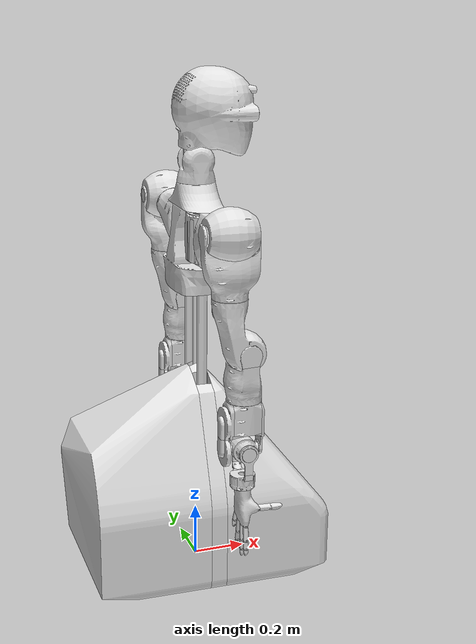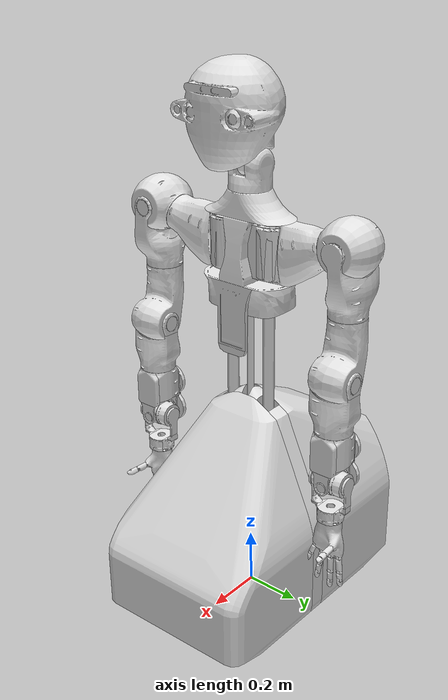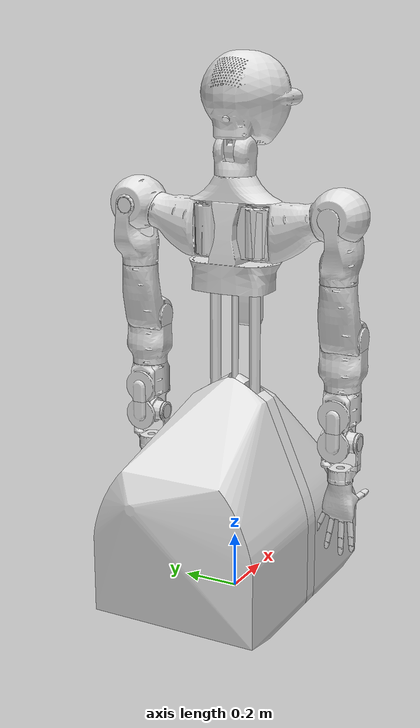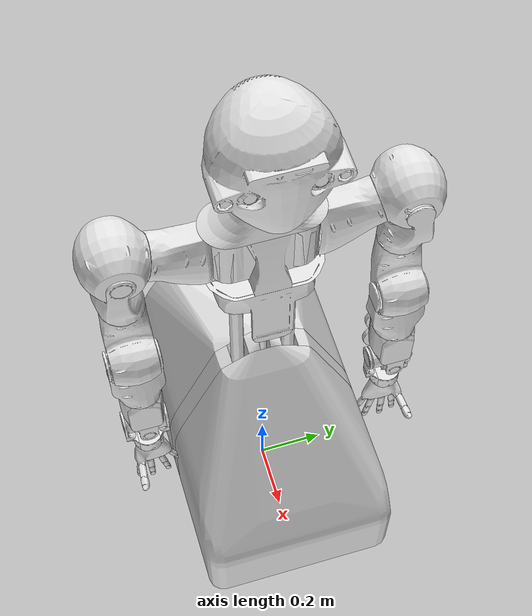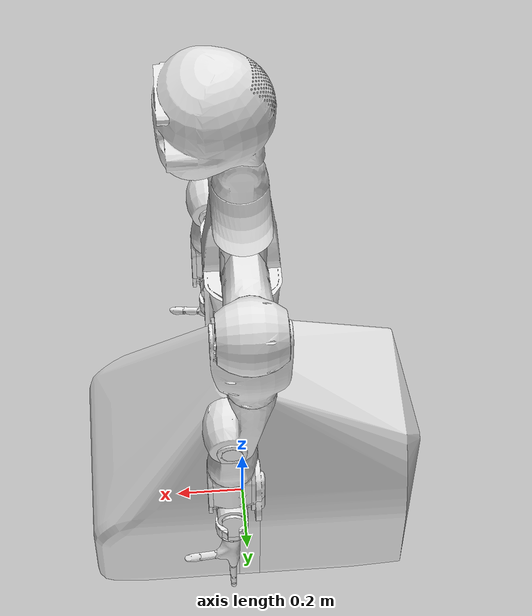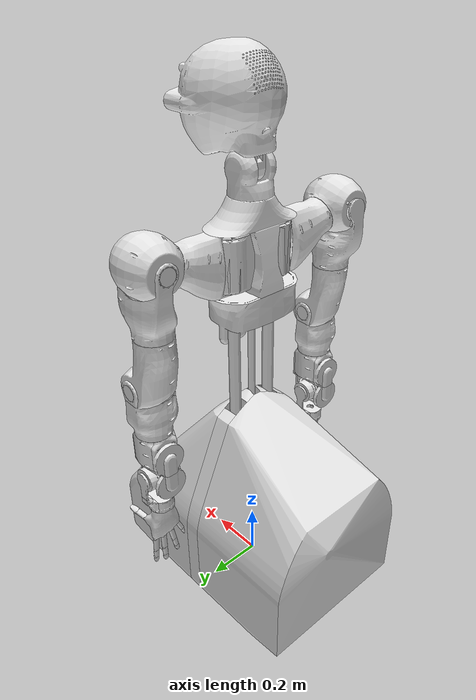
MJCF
<?xml version="1.0" ?>
<mujoco model="armar6">
	<compiler meshdir="armar6/meshes" texturedir="armar6/textures" angle="radian" autolimits="true" balanceinertia="true" boundmass="0.000001" boundinertia="0.000001"/>
	<default>
		<default class="visual">
			<geom contype="0" conaffinity="0"/>
		</default>
		<default class="collision">
			<geom rgba="0.9 0.9 0.9 1.0"/>
		</default>
	</default>
	<asset>
		<mesh name="platform_01" file="stl/platform_01.stl" scale="1.0 1.0 1.0"/>
		<mesh name="platform_02" file="stl/platform_02.stl" scale="1.0 1.0 1.0"/>
		<mesh name="platform_03" file="stl/platform_03.stl" scale="1.0 1.0 1.0"/>
		<mesh name="platform_04" file="stl/platform_04.stl" scale="1.0 1.0 1.0"/>
		<mesh name="platform_05" file="stl/platform_05.stl" scale="1.0 1.0 1.0"/>
		<mesh name="platform_06" file="stl/platform_06.stl" scale="1.0 1.0 1.0"/>
		<mesh name="platform_07" file="stl/platform_07.stl" scale="1.0 1.0 1.0"/>
		<mesh name="platform_08" file="stl/platform_08.stl" scale="1.0 1.0 1.0"/>
		<mesh name="platform_09" file="stl/platform_09.stl" scale="1.0 1.0 1.0"/>
		<mesh name="torso_1" file="stl/torso_1.stl" scale="1.0 1.0 1.0"/>
		<mesh name="torso_2" file="stl/torso_2.stl" scale="1.0 1.0 1.0"/>
		<mesh name="torso_3" file="stl/torso_3.stl" scale="1.0 1.0 1.0"/>
		<mesh name="torso_4" file="stl/torso_4.stl" scale="1.0 1.0 1.0"/>
		<mesh name="Mesh_2h09010_arml_cla" file="stl/Mesh_2h09010_arml_cla.stl" scale="1.0 1.0 1.0"/>
		<mesh name="Mesh_6a11000_halsbasis_t1" file="stl/Mesh_6a11000_halsbasis_t1.stl" scale="1.0 1.0 1.0"/>
		<mesh name="Mesh_2h09020_arml_t12" file="stl/Mesh_2h09020_arml_t12.stl" scale="1.0 1.0 1.0"/>
		<mesh name="Mesh_2h09030_arml_t23" file="stl/Mesh_2h09030_arml_t23.stl" scale="1.0 1.0 1.0"/>
		<mesh name="Mesh_2h09040_arml_t34" file="stl/Mesh_2h09040_arml_t34.stl" scale="1.0 1.0 1.0"/>
		<mesh name="Mesh_2h09050_arml_t45" file="stl/Mesh_2h09050_arml_t45.stl" scale="1.0 1.0 1.0"/>
		<mesh name="Mesh_2h09060_arml_t56_01" file="stl/Mesh_2h09060_arml_t56_01.stl" scale="1.0 1.0 1.0"/>
		<mesh name="Mesh_2h09060_arml_t56_02" file="stl/Mesh_2h09060_arml_t56_02.stl" scale="1.0 1.0 1.0"/>
		<mesh name="Mesh_2h09060_arml_t56_03" file="stl/Mesh_2h09060_arml_t56_03.stl" scale="1.0 1.0 1.0"/>
		<mesh name="Mesh_2h09070_arml_t67_01" file="stl/Mesh_2h09070_arml_t67_01.stl" scale="1.0 1.0 1.0"/>
		<mesh name="Mesh_2h09070_arml_t67_02" file="stl/Mesh_2h09070_arml_t67_02.stl" scale="1.0 1.0 1.0"/>
		<mesh name="Mesh_2h09070_arml_t67_03" file="stl/Mesh_2h09070_arml_t67_03.stl" scale="1.0 1.0 1.0"/>
		<mesh name="Mesh_2h09070_arml_t67_04" file="stl/Mesh_2h09070_arml_t67_04.stl" scale="1.0 1.0 1.0"/>
		<mesh name="Mesh_2h09070_arml_t67_05" file="stl/Mesh_2h09070_arml_t67_05.stl" scale="1.0 1.0 1.0"/>
		<mesh name="Mesh_2h09070_arml_t67_06" file="stl/Mesh_2h09070_arml_t67_06.stl" scale="1.0 1.0 1.0"/>
		<mesh name="Mesh_2h09070_arml_t67_07" file="stl/Mesh_2h09070_arml_t67_07.stl" scale="1.0 1.0 1.0"/>
		<mesh name="Mesh_2h09070_arml_t67_08" file="stl/Mesh_2h09070_arml_t67_08.stl" scale="1.0 1.0 1.0"/>
		<mesh name="Mesh_2h09070_arml_t67_09" file="stl/Mesh_2h09070_arml_t67_09.stl" scale="1.0 1.0 1.0"/>
		<mesh name="Mesh_2h09070_arml_t67_10" file="stl/Mesh_2h09070_arml_t67_10.stl" scale="1.0 1.0 1.0"/>
		<mesh name="Mesh_2h09080_arml_t78" file="stl/Mesh_2h09080_arml_t78.stl" scale="1.0 1.0 1.0"/>
		<mesh name="Mesh_2h09090_arml_t8_01" file="stl/Mesh_2h09090_arml_t8_01.stl" scale="1.0 1.0 1.0"/>
		<mesh name="Mesh_2h09090_arml_t8_02" file="stl/Mesh_2h09090_arml_t8_02.stl" scale="1.0 1.0 1.0"/>
		<mesh name="Mesh_2h09090_arml_t8_03" file="stl/Mesh_2h09090_arml_t8_03.stl" scale="1.0 1.0 1.0"/>
		<mesh name="Mesh_2h09090_arml_t8_04" file="stl/Mesh_2h09090_arml_t8_04.stl" scale="1.0 1.0 1.0"/>
		<mesh name="Mesh_2h09090_arml_t8_05" file="stl/Mesh_2h09090_arml_t8_05.stl" scale="1.0 1.0 1.0"/>
		<mesh name="Mesh_2h09090_arml_t8_06" file="stl/Mesh_2h09090_arml_t8_06.stl" scale="1.0 1.0 1.0"/>
		<mesh name="Mesh_2h09090_arml_t8_07" file="stl/Mesh_2h09090_arml_t8_07.stl" scale="1.0 1.0 1.0"/>
		<mesh name="palm_l" file="stl/palm_l.stl" scale="1.0 1.0 1.0"/>
		<mesh name="index_prox" file="stl/index_prox.stl" scale="1.0 1.0 1.0"/>
		<mesh name="index_inter" file="stl/index_inter.stl" scale="1.0 1.0 1.0"/>
		<mesh name="index_dist" file="stl/index_dist.stl" scale="1.0 1.0 1.0"/>
		<mesh name="middle_prox" file="stl/middle_prox.stl" scale="1.0 1.0 1.0"/>
		<mesh name="middle_inter" file="stl/middle_inter.stl" scale="1.0 1.0 1.0"/>
		<mesh name="middle_dist" file="stl/middle_dist.stl" scale="1.0 1.0 1.0"/>
		<mesh name="pinky_prox" file="stl/pinky_prox.stl" scale="1.0 1.0 1.0"/>
		<mesh name="pinky_inter" file="stl/pinky_inter.stl" scale="1.0 1.0 1.0"/>
		<mesh name="pinky_dist" file="stl/pinky_dist.stl" scale="1.0 1.0 1.0"/>
		<mesh name="ring_prox" file="stl/ring_prox.stl" scale="1.0 1.0 1.0"/>
		<mesh name="ring_inter" file="stl/ring_inter.stl" scale="1.0 1.0 1.0"/>
		<mesh name="ring_dist" file="stl/ring_dist.stl" scale="1.0 1.0 1.0"/>
		<mesh name="thumb_prox" file="stl/thumb_prox.stl" scale="1.0 1.0 1.0"/>
		<mesh name="thumb_dist" file="stl/thumb_dist.stl" scale="1.0 1.0 1.0"/>
		<mesh name="palm_r" file="stl/palm_r.stl" scale="1.0 1.0 1.0"/>
		<mesh name="Mesh_6a12000_halsmitte_t12" file="stl/Mesh_6a12000_halsmitte_t12.stl" scale="1.0 1.0 1.0"/>
		<mesh name="Mesh_6a13000_halsoben_v13" file="stl/Mesh_6a13000_halsoben_v13.stl" scale="1.0 1.0 1.0"/>
	</asset>
	<worldbody>
		<body name="armar6" pos="0.0 0.0 0.0" quat="1.0 0.0 0.0 0.0">
			<geom name="Geom_0" type="mesh" pos="-0.23908907175064087 0.0011418842477723956 0.30750465393066406" quat="0.9987695813179016 -0.00035170995397493243 0.04766320437192917 0.013688200153410435" mesh="platform_01" class="collision"/>
			<geom name="Geom_1" type="mesh" pos="0.20871004462242126 -3.0155450076563284e-05 0.26197001338005066" quat="0.9861933588981628 -0.0011583680752664804 -0.16559343039989471 -0.0002805482072290033" mesh="platform_02" class="collision"/>
			<geom name="Geom_2" type="mesh" pos="6.449293876720219e-11 -1.9112326304915328e-11 0.14333148300647736" quat="0.7071067690849304 0.0 0.0 -0.7071067690849304" mesh="platform_03" class="collision"/>
			<geom name="Geom_3" type="mesh" pos="-2.2915676254342543e-06 -0.18701200187206268 0.298531174659729" quat="0.9986951351165771 -0.05106906592845917 -1.922875344462227e-05 1.3181876056478359e-05" mesh="platform_04" class="collision"/>
			<geom name="Geom_4" type="mesh" pos="9.5631241947558e-07 -0.07499920576810837 0.14335519075393677" quat="0.7071067690849304 1.3158047295291908e-05 -1.2814010688089184e-06 -0.7071067690849304" mesh="platform_05" class="collision"/>
			<geom name="Geom_5" type="mesh" pos="-3.338966735100257e-06 0.18701665103435516 0.298539400100708" quat="0.9986956119537354 0.05105941742658615 -1.5566569345537573e-05 -1.554261689307168e-05" mesh="platform_06" class="collision"/>
			<geom name="Geom_6" type="mesh" pos="-9.563812000124017e-07 0.07499920576810837 0.14335519075393677" quat="0.7071067690849304 -1.3158811270841397e-05 1.2820058827855974e-06 -0.7071067690849304" mesh="platform_07" class="collision"/>
			<geom name="Geom_7" type="mesh" pos="-2.4181961634894833e-05 -0.032434575259685516 0.3921465277671814" quat="0.7069283127784729 -0.0001096158375730738 -0.00024148341617546976 -0.7072851657867432" mesh="platform_08" class="collision"/>
			<geom name="Geom_8" type="mesh" pos="-2.4532324459869415e-05 0.032434575259685516 0.3921465277671814" quat="0.707281768321991 0.0002405394916422665 0.00011056109360652044 -0.7069317102432251" mesh="platform_09" class="collision"/>
			<body name="link0_7" pos="0.0 0.0 1.1950000524520874" quat="0.7071067690849304 0.0 0.0 -0.7071067690849304">
				<inertial mass="42.921875" pos="-8.60810268932255e-06 0.003858802607282996 0.03855016827583313" quat="0.7072494029998779 0.01781361922621727 -0.017727065831422806 0.7065173387527466" diaginertia="0.8874343633651733 0.7422398328781128 0.29746219515800476"/>
				<geom name="Geom_9" type="mesh" pos="-1.1988852747890633e-05 0.005371134728193283 0.02722056210041046" quat="0.7060954570770264 0.04865260049700737 -0.04827491566538811 0.7047919034957886" mesh="torso_1" class="collision"/>
				<geom name="Geom_10" type="mesh" pos="-0.0759999081492424 -0.00012338596570771188 -0.3070000112056732" quat="0.9999999403953552 -0.00039807689609006047 0.0 0.0" mesh="torso_2" class="collision"/>
				<geom name="Geom_11" type="mesh" pos="1.2635163748608846e-10 -0.0002385206607868895 -0.2995902895927429" quat="0.9992132186889648 -0.00039776507765054703 -1.5786925359861925e-05 -0.0396578423678875" mesh="torso_3" class="collision"/>
				<geom name="Geom_12" type="mesh" pos="0.0759999081492424 -0.0003654528991319239 -0.3069998025894165" quat="0.9999999403953552 -0.00039807771099731326 0.0 0.0" mesh="torso_4" class="collision"/>
				<geom name="Geom_13" type="mesh" pos="-0.08103914558887482 -4.163836820225697e-06 0.10412884503602982" quat="0.7049452066421509 0.02882375754415989 0.02880515716969967 0.7080901861190796" mesh="Mesh_2h09010_arml_cla" class="collision"/>
				<geom name="Geom_14" type="mesh" pos="0.08103914558887482 4.151164375798544e-06 0.10412884503602982" quat="0.7080906629562378 0.02880517765879631 -0.028823737055063248 -0.7049447298049927" mesh="Mesh_2h09010_arml_cla" class="collision"/>
				<geom name="Geom_15" type="mesh" pos="5.643061058435705e-07 6.404436021512083e-07 0.24260690808296204" quat="-0.0004728139901999384 0.7071082592010498 0.0004848051758017391 0.7071049809455872" mesh="Mesh_6a11000_halsbasis_t1" class="collision"/>
				<joint name="TorsoJoint" type="slide" pos="0.0 0.0 0.0" range="-0.5 0.5" axis="0.0 0.0 1.0"/>
				<body name="link0_63" pos="0.09000000357627869 3.3058799431273656e-07 0.10000000149011612" quat="0.7071087956428528 0.0 0.0 -0.7071048021316528">
					<inertial mass="4.641332149505615" pos="-1.9983554011560045e-06 0.11062423884868622 0.02188810519874096" quat="0.9445297718048096 -0.32842549681663513 0.00027361296815797687 0.0003834966628346592" diaginertia="0.024549242109060287 0.01810256391763687 0.014694479294121265"/>
					<geom name="Geom_56" type="mesh" pos="-1.9983554011560045e-06 0.11062423884868622 0.02188810519874096" quat="0.9445297718048096 -0.32842549681663513 0.00027361296815797687 0.0003834966628346592" mesh="Mesh_2h09020_arml_t12" class="collision"/>
					<joint name="ArmR1_Cla1" type="hinge" pos="0.0 0.0 0.0" range="0.0 0.0" axis="0.0 0.0 1.0"/>
					<body name="link0_65" pos="0.0 0.28977999091148376 0.07765000313520432" quat="1.0 0.0 0.0 0.0">
						<inertial mass="6.514058589935303" pos="-0.0026242216117680073 0.00547403609380126 0.0014532019849866629" quat="0.41690516471862793 0.561397135257721 0.44454503059387207 0.5598241686820984" diaginertia="0.025567620992660522 0.022996222600340843 0.022928500548005104"/>
						<geom name="Geom_57" type="mesh" pos="-0.0026242216117680073 0.00547403609380126 0.0014532019849866629" quat="0.41690516471862793 0.561397135257721 0.44454503059387207 0.5598241686820984" mesh="Mesh_2h09030_arml_t23" class="collision"/>
						<joint name="ArmR2_Sho1" type="hinge" pos="0.0 0.0 0.0" range="0.0 0.0" axis="0.0 0.9659258723258972 0.25881895422935486"/>
						<body name="link0_67" pos="0.0 0.0 0.0" quat="0.707105278968811 -0.7071082592010498 0.0 0.0">
							<inertial mass="4.186227321624756" pos="0.0031595618929713964 0.11988010257482529 0.009519310668110847" quat="0.6713733077049255 0.20513257384300232 0.6646022200584412 -0.2558952569961548" diaginertia="0.023510094732046127 0.01641996204853058 0.01437942311167717"/>
							<geom name="Geom_58" type="mesh" pos="0.0031595618929713964 0.11988010257482529 0.009519310668110847" quat="0.6713733077049255 0.20513257384300232 0.6646022200584412 -0.2558952569961548" mesh="Mesh_2h09040_arml_t34" class="collision"/>
							<joint name="ArmR3_Sho2" type="hinge" pos="0.0 0.0 0.0" range="0.0 0.0" axis="1.0 0.0 0.0"/>
							<body name="link0_69" pos="0.0 0.0 0.0" quat="0.4999980032444 -0.5000020265579224 -0.5 -0.5">
								<inertial mass="5.494523525238037" pos="-0.0022166140843182802 -0.03205019235610962 0.3651427626609802" quat="0.6883682012557983 0.14456790685653687 -0.16545535624027252 0.6912842392921448" diaginertia="0.033287789672613144 0.03231581673026085 0.01199717540293932"/>
								<geom name="Geom_59" type="mesh" pos="-0.0022166140843182802 -0.03205019235610962 0.3651427626609802" quat="0.6883682012557983 0.14456790685653687 -0.16545535624027252 0.6912842392921448" mesh="Mesh_2h09050_arml_t45" class="collision"/>
								<joint name="ArmR4_Sho3" type="hinge" pos="0.0 0.0 0.0" range="0.0 0.0" axis="0.0 0.0 1.0"/>
								<body name="link0_71" pos="0.0 -0.054999999701976776 0.4090000092983246" quat="1.0 0.0 0.0 0.0">
									<inertial mass="2.7591729164123535" pos="0.0013214589562267065 0.005565263330936432 0.1098216101527214" quat="0.47372815012931824 0.5198296308517456 0.42536303400993347 0.5695832371711731" diaginertia="0.00866414699703455 0.0074538071639835835 0.0066077555529773235"/>
									<geom name="Geom_60" type="mesh" pos="0.001954891486093402 0.005780649837106466 0.11422663927078247" quat="0.6546503901481628 -0.22352944314479828 0.6924439668655396 -0.20491154491901398" mesh="Mesh_2h09060_arml_t56_01" class="collision"/>
									<geom name="Geom_61" type="mesh" pos="0.07322466373443604 0.00026982248527929187 -0.0017227577045559883" quat="0.6577778458595276 0.7531831860542297 0.004401055630296469 -0.004902516957372427" mesh="Mesh_2h09060_arml_t56_02" class="collision"/>
									<geom name="Geom_62" type="mesh" pos="-0.07043138146400452 0.00014143316366244107 0.0009638782357797027" quat="0.16215890645980835 0.9867645502090454 -9.113234409596771e-05 0.00045004638377577066" mesh="Mesh_2h09060_arml_t56_03" class="collision"/>
									<joint name="ArmR5_Elb1" type="hinge" pos="0.0 0.0 0.0" range="0.0 0.0" axis="1.0 0.0 0.0"/>
									<body name="link0_73" pos="0.0 0.0 0.0" quat="1.0 0.0 0.0 0.0">
										<inertial mass="1.323380708694458" pos="-7.264896703418344e-05 0.026484208181500435 0.269603431224823" quat="0.95482337474823 -0.29717233777046204 2.4389843019889668e-05 -0.0009568182867951691" diaginertia="0.007656598463654518 0.006845767144113779 0.003992720041424036"/>
										<geom name="Geom_63" type="mesh" pos="0.04904818907380104 0.0005475301877595484 0.2278057187795639" quat="0.9972087144851685 -0.03267933055758476 0.06708387285470963 0.0025736528914421797" mesh="Mesh_2h09070_arml_t67_01" class="collision"/>
										<geom name="Geom_64" type="mesh" pos="-1.298043006414673e-08 -0.057883650064468384 0.35432007908821106" quat="0.7070271372795105 -0.010613306425511837 0.010614944621920586 0.7070270776748657" mesh="Mesh_2h09070_arml_t67_02" class="collision"/>
										<geom name="Geom_65" type="mesh" pos="-2.5913489025697345e-06 0.07031302154064178 0.3585358262062073" quat="0.7070667743682861 0.006919998209923506 -0.006110544316470623 0.7070865631103516" mesh="Mesh_2h09070_arml_t67_03" class="collision"/>
										<geom name="Geom_66" type="mesh" pos="0.05108014866709709 -0.038606297224760056 0.296926349401474" quat="0.7465304732322693 0.6477420926094055 -0.13063661754131317 -0.07782396674156189" mesh="Mesh_2h09070_arml_t67_04" class="collision"/>
										<geom name="Geom_67" type="mesh" pos="0.04765205830335617 0.04340628162026405 0.2984026074409485" quat="0.5927656888961792 0.7679161429405212 0.028681503608822823 0.24106216430664062" mesh="Mesh_2h09070_arml_t67_05" class="collision"/>
										<geom name="Geom_68" type="mesh" pos="-1.0616304280119948e-06 0.06732528656721115 0.25963494181632996" quat="0.7061805725097656 -0.03628489002585411 0.03611018508672714 0.7061787843704224" mesh="Mesh_2h09070_arml_t67_06" class="collision"/>
										<geom name="Geom_69" type="mesh" pos="5.9854162827832624e-05 -0.05733291059732437 0.24773843586444855" quat="0.7068926095962524 0.01085700187832117 -0.0044671171344816685 0.7072234749794006" mesh="Mesh_2h09070_arml_t67_07" class="collision"/>
										<geom name="Geom_70" type="mesh" pos="-0.04910891503095627 0.00053496373584494 0.22820699214935303" quat="0.997360348701477 -0.028476828709244728 -0.06675867736339569 -0.0021694861352443695" mesh="Mesh_2h09070_arml_t67_08" class="collision"/>
										<geom name="Geom_71" type="mesh" pos="-0.050927359610795975 -0.03914576768875122 0.2969658672809601" quat="0.7477163672447205 0.6452646255493164 0.1306317150592804 0.08653959631919861" mesh="Mesh_2h09070_arml_t67_09" class="collision"/>
										<geom name="Geom_72" type="mesh" pos="-0.04850269854068756 0.042520198971033096 0.29731738567352295" quat="0.6586331725120544 0.7148585319519043 -0.22018752992153168 -0.08183575421571732" mesh="Mesh_2h09070_arml_t67_10" class="collision"/>
										<joint name="ArmR6_Elb2" type="hinge" pos="0.0 0.0 0.0" range="0.0 0.0" axis="0.0 0.0 1.0"/>
										<body name="link0_75" pos="0.0 0.0 0.36399999260902405" quat="1.0 0.0 0.0 0.0">
											<inertial mass="1.1816606521606445" pos="0.0034763282164931297 -0.0012621578061953187 2.2226204237085767e-05" quat="-0.002658423036336899 0.7067897915840149 0.002487173769623041 0.7074142694473267" diaginertia="0.0017266924260184169 0.0015820622211322188 0.0010909022530540824"/>
											<geom name="Geom_73" type="mesh" pos="0.0034763282164931297 -0.0012621578061953187 2.2226204237085767e-05" quat="-0.002658423036336899 0.7067897915840149 0.002487173769623041 0.7074142694473267" mesh="Mesh_2h09080_arml_t78" class="collision"/>
											<joint name="ArmR7_Wri1" type="hinge" pos="0.0 0.0 0.0" range="0.0 0.0" axis="0.0 -1.0 0.0"/>
											<body name="link0_77" pos="0.0 0.0 0.0" quat="0.707105278968811 0.0 0.0 0.7071082592010498">
												<inertial mass="1.64207923412323" pos="-0.0015873624943196774 -0.002150126500055194 0.16746027767658234" quat="0.9993650913238525 -0.016119277104735374 -0.008230193518102169 -0.030689498409628868" diaginertia="0.009214787743985653 0.008054361678659916 0.0020288401283323765"/>
												<geom name="Geom_74" type="mesh" pos="-2.5014254788402468e-05 0.0006606595125049353 0.12186624854803085" quat="0.0006991556729190052 0.7070338129997253 0.001839448930695653 0.7071769833564758" mesh="Mesh_2h09090_arml_t8_01" class="collision"/>
												<geom name="Geom_75" type="mesh" pos="-6.812727804117458e-08 -0.06317408382892609 0.008618473075330257" quat="0.7070921063423157 -0.004724501632153988 0.004725577775388956 0.7070898413658142" mesh="Mesh_2h09090_arml_t8_02" class="collision"/>
												<geom name="Geom_76" type="mesh" pos="2.647066503413953e-05 0.0626370757818222 0.01715272292494774" quat="0.7071325182914734 -0.00035977462539449334 -6.062036118237302e-05 0.7070809602737427" mesh="Mesh_2h09090_arml_t8_03" class="collision"/>
												<geom name="Geom_77" type="mesh" pos="0.0001532769383629784 -0.04166693985462189 0.11673421412706375" quat="0.7026854753494263 -0.07682538777589798 0.1131587103009224 0.6982306838035583" mesh="Mesh_2h09090_arml_t8_04" class="collision"/>
												<geom name="Geom_78" type="mesh" pos="-0.00010127700807061046 0.04261576384305954 0.1163441613316536" quat="0.7026433944702148 0.08241218328475952 -0.10800295323133469 0.6984524726867676" mesh="Mesh_2h09090_arml_t8_05" class="collision"/>
												<geom name="Geom_79" type="mesh" pos="-1.447715362701274e-06 -0.05752373859286308 0.08827167004346848" quat="-0.23531605303287506 0.6667888760566711 -0.2358095496892929 0.666642963886261" mesh="Mesh_2h09090_arml_t8_06" class="collision"/>
												<geom name="Geom_80" type="mesh" pos="7.302030553546501e-07 0.05815986916422844 0.0874510109424591" quat="0.21441951394081116 0.6738195419311523 0.21392442286014557 0.673964262008667" mesh="Mesh_2h09090_arml_t8_07" class="collision"/>
												<geom name="Geom_81" type="mesh" pos="-0.002640562364831567 -0.0018192088464275002 0.21232052147388458" quat="-0.9980687499046326 -0.023030448704957962 -0.0013556501362472773 0.057675667107105255" mesh="palm_r" class="collision"/>
												<joint name="ArmR8_Wri2" type="hinge" pos="0.0 0.0 0.0" range="0.0 0.0" axis="0.0 -1.0 0.0"/>
												<body name="link0_88" pos="7.646550059803303e-09 -0.007499440107494593 0.2917200028896332" quat="0.4999989867210388 -0.5 0.4999989867210388 -0.5000020265579224">
													<inertial mass="0.02538316138088703" pos="-8.225680176110473e-06 -0.030843479558825493 -8.414039621129632e-05" quat="0.5016137957572937 0.4987810552120209 -0.49807825684547424 0.5015168190002441" diaginertia="8.413370778725948e-06 8.243548109021503e-06 1.0851806564460276e-06"/>
													<geom name="Geom_85" type="mesh" pos="-8.225680176110473e-06 -0.030843479558825493 -8.414039621129632e-05" quat="0.5016137957572937 0.4987810552120209 -0.49807825684547424 0.5015168190002441" mesh="middle_prox" class="collision"/>
													<joint name="Middle_R_1_Joint" type="hinge" pos="0.0 0.0 0.0" range="0.0 0.0" axis="1.0 0.0 0.0"/>
													<body name="link0_90" pos="0.0 -0.05999999865889549 0.0" quat="1.0 0.0 0.0 0.0">
														<inertial mass="0.014561756514012814" pos="-3.4415239497320727e-05 -0.018362386152148247 0.00029420116334222257" quat="0.5047402381896973 0.4994126558303833 -0.49391400814056396 0.5018697381019592" diaginertia="2.5808008103922475e-06 2.520335328881629e-06 9.999999974752427e-07"/>
														<geom name="Geom_86" type="mesh" pos="-3.4415239497320727e-05 -0.018362386152148247 0.00029420116334222257" quat="0.5047402381896973 0.4994126558303833 -0.49391400814056396 0.5018697381019592" mesh="middle_inter" class="collision"/>
														<joint name="Middle_R_2_Joint" type="hinge" pos="0.0 0.0 0.0" range="0.0 0.0" axis="1.0 0.0 0.0"/>
														<body name="link0_92" pos="0.0 -0.039000000804662704 0.0" quat="1.0 0.0 0.0 0.0">
															<inertial mass="0.007588660344481468" pos="-1.4801357792748604e-06 -0.009854770265519619 0.00019601777603384107" quat="0.5127883553504944 0.5100603699684143 0.4869072735309601 -0.4897017776966095" diaginertia="9.999999974752427e-07 9.999999974752427e-07 9.999999974752427e-07"/>
															<geom name="Geom_87" type="mesh" pos="-1.4801357792748604e-06 -0.009854770265519619 0.00019601777603384107" quat="0.5127883553504944 0.5100603699684143 0.4869072735309601 -0.4897017776966095" mesh="middle_dist" class="collision"/>
															<joint name="Middle_R_3_Joint" type="hinge" pos="0.0 0.0 0.0" range="0.0 0.0" axis="1.0 0.0 0.0"/>
														</body>
													</body>
												</body>
												<body name="link0_94" pos="-5.638520050865736e-08 0.055300500243902206 0.27031999826431274" quat="-0.39037084579467773 0.5895857810974121 -0.3903718590736389 0.5895837545394897">
													<inertial mass="0.014701016247272491" pos="-1.8761980754788965e-05 -0.02276996523141861 -7.110893056960776e-05" quat="0.5519939661026001 0.5492344498634338 -0.4416252374649048 0.44565823674201965" diaginertia="3.0928017622500192e-06 3.08664630210842e-06 9.999999974752427e-07"/>
													<geom name="Geom_88" type="mesh" pos="-1.8761980754788965e-05 -0.02276996523141861 -7.110893056960776e-05" quat="0.5519939661026001 0.5492344498634338 -0.4416252374649048 0.44565823674201965" mesh="pinky_prox" class="collision"/>
													<joint name="Pinky_R_1_Joint" type="hinge" pos="0.0 0.0 0.0" range="0.0 0.0" axis="1.0 0.0 0.0"/>
													<body name="link0_96" pos="0.0 -0.04610000178217888 0.0" quat="1.0 0.0 0.0 0.0">
														<inertial mass="0.007457030471414328" pos="4.895448000752367e-06 -0.012241008691489697 0.00026062584947794676" quat="0.7138955593109131 0.7002522349357605 -5.2752973715541884e-05 -5.174480611458421e-05" diaginertia="9.999999974752427e-07 9.999999974752427e-07 9.999999974752427e-07"/>
														<geom name="Geom_89" type="mesh" pos="4.895448000752367e-06 -0.012241008691489697 0.00026062584947794676" quat="0.7138955593109131 0.7002522349357605 -5.2752973715541884e-05 -5.174480611458421e-05" mesh="pinky_inter" class="collision"/>
														<joint name="Pinky_R_2_Joint" type="hinge" pos="0.0 0.0 0.0" range="0.0 0.0" axis="1.0 0.0 0.0"/>
														<body name="link0_98" pos="0.0 -0.027060000225901604 0.0" quat="1.0 0.0 0.0 0.0">
															<inertial mass="0.005034840200096369" pos="-5.06505770658805e-08 -0.00826839730143547 0.00011376729526091367" quat="0.0004965564585290849 0.000483532901853323 -0.7065339684486389 0.7076787948608398" diaginertia="9.999999974752427e-07 9.999999974752427e-07 9.999999974752427e-07"/>
															<geom name="Geom_90" type="mesh" pos="-5.06505770658805e-08 -0.00826839730143547 0.00011376729526091367" quat="0.0004965564585290849 0.000483532901853323 -0.7065339684486389 0.7076787948608398" mesh="pinky_dist" class="collision"/>
															<joint name="Pinky_R_3_Joint" type="hinge" pos="0.0 0.0 0.0" range="0.0 0.0" axis="1.0 0.0 0.0"/>
														</body>
													</body>
												</body>
												<body name="link0_100" pos="-5.638520050865736e-08 0.055300500243902206 0.27031999826431274" quat="-0.39037084579467773 0.5895857810974121 -0.3903718590736389 0.5895837545394897">
													<inertial mass="9.999999974752427e-07" pos="-5.638520050865736e-08 0.055300500243902206 0.27031999826431274" quat="-0.39037084579467773 0.5895857810974121 -0.3903718590736389 0.5895837545394897" diaginertia="9.999999974752427e-07 9.999999974752427e-07 9.999999974752427e-07"/>
													<joint name="RightHandFingers" type="hinge" pos="0.0 0.0 0.0" range="0.0 0.0" axis="1.0 0.0 0.0"/>
												</body>
												<body name="link0_104" pos="-2.6816399767426446e-08 0.026300499215722084 0.28652000427246094" quat="-0.4544900059700012 0.5417010188102722 -0.4544910192489624 0.5416980385780334">
													<inertial mass="0.020584987476468086" pos="-2.5416979951842222e-06 -0.027961574494838715 -8.143818558892235e-05" quat="0.5020254254341125 0.49866124987602234 -0.49790117144584656 0.5013999342918396" diaginertia="5.784392669738736e-06 5.654965207213536e-06 9.999999974752427e-07"/>
													<geom name="Geom_91" type="mesh" pos="-2.5416979951842222e-06 -0.027961574494838715 -8.143818558892235e-05" quat="0.5020254254341125 0.49866124987602234 -0.49790117144584656 0.5013999342918396" mesh="ring_prox" class="collision"/>
													<joint name="Ring_R_1_Joint" type="hinge" pos="0.0 0.0 0.0" range="0.0 0.0" axis="1.0 0.0 0.0"/>
													<body name="link0_106" pos="0.0 -0.055059999227523804 0.0" quat="1.0 0.0 0.0 0.0">
														<inertial mass="0.012723562307655811" pos="-1.7029418813763186e-05 -0.017273511737585068 0.00020274649432394654" quat="0.5036312937736511 0.49794304370880127 -0.49543386697769165 0.502944827079773" diaginertia="2.0468648926907917e-06 1.9947437976952642e-06 9.999999974752427e-07"/>
														<geom name="Geom_92" type="mesh" pos="-1.7029418813763186e-05 -0.017273511737585068 0.00020274649432394654" quat="0.5036312937736511 0.49794304370880127 -0.49543386697769165 0.502944827079773" mesh="ring_inter" class="collision"/>
														<joint name="Ring_R_2_Joint" type="hinge" pos="0.0 0.0 0.0" range="0.0 0.0" axis="1.0 0.0 0.0"/>
														<body name="link0_108" pos="0.0 -0.037039998918771744 0.0" quat="1.0 0.0 0.0 0.0">
															<inertial mass="0.006862672511488199" pos="1.8973385522258468e-05 -0.009891333989799023 8.793917368166149e-05" quat="0.49546316266059875 -0.49590304493904114 -0.5038319230079651 -0.5047274827957153" diaginertia="9.999999974752427e-07 9.999999974752427e-07 9.999999974752427e-07"/>
															<geom name="Geom_93" type="mesh" pos="1.8973385522258468e-05 -0.009891333989799023 8.793917368166149e-05" quat="0.49546316266059875 -0.49590304493904114 -0.5038319230079651 -0.5047274827957153" mesh="ring_dist" class="collision"/>
															<joint name="Ring_R_3_Joint" type="hinge" pos="0.0 0.0 0.0" range="0.0 0.0" axis="1.0 0.0 0.0"/>
														</body>
													</body>
												</body>
												<body name="link0_110" pos="-0.04690999910235405 -0.03949970006942749 0.221110001206398" quat="0.13718491792678833 0.6654515862464905 0.7228155732154846 -0.12606392800807953">
													<inertial mass="0.021300282329320908" pos="-8.096490091702435e-06 -0.023335805162787437 -9.092833352042362e-06" quat="0.5039452314376831 0.4991900622844696 -0.49555057287216187 0.5012764930725098" diaginertia="4.795987479155883e-06 4.712325335276546e-06 1.1131986639156821e-06"/>
													<geom name="Geom_94" type="mesh" pos="-8.096490091702435e-06 -0.023335805162787437 -9.092833352042362e-06" quat="0.5039452314376831 0.4991900622844696 -0.49555057287216187 0.5012764930725098" mesh="thumb_prox" class="collision"/>
													<joint name="Thumb_R_1_Joint" type="hinge" pos="0.0 0.0 0.0" range="0.0 0.0" axis="1.0 0.0 0.0"/>
													<body name="link0_112" pos="-1.9999999494757503e-05 -0.04408000037074089 -4.999999873689376e-05" quat="1.0 0.0 0.0 0.0">
														<inertial mass="0.015970006585121155" pos="-3.8115447296149796e-06 -0.017068609595298767 0.00010753015521913767" quat="0.49813613295555115 0.4996276795864105 0.5031560659408569 -0.49906566739082336" diaginertia="2.969749630210572e-06 2.9179732337070163e-06 9.999999974752427e-07"/>
														<geom name="Geom_95" type="mesh" pos="-3.8115447296149796e-06 -0.017068609595298767 0.00010753015521913767" quat="0.49813613295555115 0.4996276795864105 0.5031560659408569 -0.49906566739082336" mesh="thumb_dist" class="collision"/>
														<joint name="Thumb_R_2_Joint" type="hinge" pos="0.0 0.0 0.0" range="0.0 0.0" axis="1.0 0.0 0.0"/>
													</body>
												</body>
												<body name="link0_82" pos="3.998880160338558e-08 -0.03921949863433838 0.2853100001811981" quat="0.5213448405265808 -0.477701872587204 0.5213448405265808 -0.4777028560638428">
													<inertial mass="0.023887978866696358" pos="-1.2821446034649853e-05 -0.028760356828570366 -8.401661762036383e-05" quat="0.5017666816711426 0.49850502610206604 -0.49765971302986145 0.5020534992218018" diaginertia="7.006298346823314e-06 6.845647476438899e-06 1.0188663281951449e-06"/>
													<geom name="Geom_82" type="mesh" pos="-1.2821446034649853e-05 -0.028760356828570366 -8.401661762036383e-05" quat="0.5017666816711426 0.49850502610206604 -0.49765971302986145 0.5020534992218018" mesh="index_prox" class="collision"/>
													<joint name="Index_R_1_Joint" type="hinge" pos="0.0 0.0 0.0" range="0.0 0.0" axis="1.0 0.0 0.0"/>
													<body name="link0_84" pos="0.0 -0.05595000088214874 0.0" quat="1.0 0.0 0.0 0.0">
														<inertial mass="0.011659549549221992" pos="-2.1045781977591105e-05 -0.01496494933962822 0.00027842738199979067" quat="0.5033544301986694 0.49675804376602173 -0.4951587915420532 0.5046617984771729" diaginertia="1.62892069965892e-06 1.5781483853061218e-06 9.999999974752427e-07"/>
														<geom name="Geom_83" type="mesh" pos="-2.1045781977591105e-05 -0.01496494933962822 0.00027842738199979067" quat="0.5033544301986694 0.49675804376602173 -0.4951587915420532 0.5046617984771729" mesh="index_inter" class="collision"/>
														<joint name="Index_R_2_Joint" type="hinge" pos="0.0 0.0 0.0" range="0.0 0.0" axis="1.0 0.0 0.0"/>
														<body name="link0_86" pos="0.0 -0.03197000175714493 0.0" quat="1.0 0.0 0.0 0.0">
															<inertial mass="0.007011548150330782" pos="1.3895119991502725e-05 -0.008136403746902943 0.00019560322107281536" quat="-0.5024529099464417 -0.49753502011299133 -0.4976828992366791 0.5023064017295837" diaginertia="9.999999974752427e-07 9.999999974752427e-07 9.999999974752427e-07"/>
															<geom name="Geom_84" type="mesh" pos="1.3895119991502725e-05 -0.008136403746902943 0.00019560322107281536" quat="-0.5024529099464417 -0.49753502011299133 -0.4976828992366791 0.5023064017295837" mesh="index_dist" class="collision"/>
															<joint name="Index_R_3_Joint" type="hinge" pos="0.0 0.0 0.0" range="0.0 0.0" axis="1.0 0.0 0.0"/>
														</body>
													</body>
												</body>
												<body name="link0_102" pos="-0.04690999910235405 -0.03949970006942749 0.221110001206398" quat="0.13718491792678833 0.6654515862464905 0.7228155732154846 -0.12606392800807953">
													<inertial mass="9.999999974752427e-07" pos="-0.04690999910235405 -0.03949970006942749 0.221110001206398" quat="0.13718491792678833 0.6654515862464905 0.7228155732154846 -0.12606392800807953" diaginertia="9.999999974752427e-07 9.999999974752427e-07 9.999999974752427e-07"/>
													<joint name="RightHandThumb" type="hinge" pos="0.0 0.0 0.0" range="0.0 0.0" axis="1.0 0.0 0.0"/>
												</body>
											</body>
										</body>
									</body>
								</body>
							</body>
						</body>
					</body>
				</body>
				<body name="link0_115" pos="0.0 0.0 0.3684999942779541" quat="0.707105278968811 0.0 0.0 0.7071082592010498">
					<inertial mass="2.2815744876861572" pos="-1.5621025113432552e-06 -8.244373361776525e-07 -0.009581021964550018" quat="0.7070817351341248 0.7071316838264465 0.0004799511225428432 -7.949338396429084e-06" diaginertia="0.0056670536287128925 0.005523578263819218 0.004320218227803707"/>
					<geom name="Geom_96" type="mesh" pos="-1.5621025113432552e-06 -8.244373361776525e-07 -0.009581021964550018" quat="0.7070817351341248 0.7071316838264465 0.0004799511225428432 -7.949338396429084e-06" mesh="Mesh_6a12000_halsmitte_t12" class="collision"/>
					<joint name="Neck_1_Yaw" type="hinge" pos="0.0 0.0 0.0" range="0.0 0.0" axis="0.0 0.0 1.0"/>
					<body name="link0_117" pos="0.0 0.0 0.0" quat="0.4999980032444 0.5 0.5000020265579224 0.5">
						<inertial mass="31.465810775756836" pos="-0.0008058120729401708 0.17242081463336945 0.07313021272420883" quat="0.5884767770767212 0.41910406947135925 -0.40972715616226196 0.5569295883178711" diaginertia="0.29873722791671753 0.28915438055992126 0.26994428038597107"/>
						<geom name="Geom_97" type="mesh" pos="-0.0008058120729401708 0.17242081463336945 0.07313021272420883" quat="0.5884767770767212 0.41910406947135925 -0.40972715616226196 0.5569295883178711" mesh="Mesh_6a13000_halsoben_v13" class="collision"/>
						<joint name="Neck_2_Pitch" type="hinge" pos="0.0 0.0 0.0" range="0.0 0.0" axis="1.0 0.0 0.0"/>
						<body name="link0_124" pos="0.0 0.17299999296665192 0.16050000488758087" quat="9.381843710798421e-07 0.7071082592010498 -9.381873837810417e-07 0.707105278968811">
							<inertial mass="9.999999974752427e-07" pos="0.0 0.17299999296665192 0.16050000488758087" quat="9.381843710798421e-07 0.7071082592010498 -9.381873837810417e-07 0.707105278968811" diaginertia="9.999999974752427e-07 9.999999974752427e-07 9.999999974752427e-07"/>
							<joint name="VirtualCentralGaze" type="slide" pos="0.0 0.0 0.0" range="-0.5 0.5" axis="1.0 0.0 0.0"/>
						</body>
						<body name="link0_120" pos="0.032999999821186066 0.24779999256134033 0.19300000369548798" quat="0.707105278968811 0.0 -0.7071082592010498 0.0">
							<inertial mass="9.999999974752427e-07" pos="0.032999999821186066 0.24779999256134033 0.19300000369548798" quat="0.707105278968811 0.0 -0.7071082592010498 0.0" diaginertia="9.999999974752427e-07 9.999999974752427e-07 9.999999974752427e-07"/>
							<joint name="VirtualCentralGazeDepthCamera" type="slide" pos="0.0 0.0 0.0" range="-0.5 0.5" axis="1.0 0.0 0.0"/>
						</body>
					</body>
				</body>
				<body name="link0_11" pos="-0.09000000357627869 -3.3058799431273656e-07 0.10000000149011612" quat="0.707105278968811 0.0 0.0 0.7071082592010498">
					<inertial mass="4.641332149505615" pos="-1.9983554011560045e-06 0.11062423884868622 0.02188810519874096" quat="0.9445297718048096 -0.32842549681663513 0.00027361296815797687 0.0003834966628346592" diaginertia="0.024549242109060287 0.01810256391763687 0.014694479294121265"/>
					<geom name="Geom_16" type="mesh" pos="-1.9983554011560045e-06 0.11062423884868622 0.02188810519874096" quat="0.9445297718048096 -0.32842549681663513 0.00027361296815797687 0.0003834966628346592" mesh="Mesh_2h09020_arml_t12" class="collision"/>
					<joint name="ArmL1_Cla1" type="hinge" pos="0.0 0.0 0.0" range="0.0 0.0" axis="0.0 0.0 1.0"/>
					<body name="link0_13" pos="0.0 0.28977999091148376 0.07765000313520432" quat="1.0 0.0 0.0 0.0">
						<inertial mass="6.514058589935303" pos="-0.0026242216117680073 0.00547403609380126 0.0014532019849866629" quat="0.41690516471862793 0.561397135257721 0.44454503059387207 0.5598241686820984" diaginertia="0.025567620992660522 0.022996222600340843 0.022928500548005104"/>
						<geom name="Geom_17" type="mesh" pos="-0.0026242216117680073 0.00547403609380126 0.0014532019849866629" quat="0.41690516471862793 0.561397135257721 0.44454503059387207 0.5598241686820984" mesh="Mesh_2h09030_arml_t23" class="collision"/>
						<joint name="ArmL2_Sho1" type="hinge" pos="0.0 0.0 0.0" range="0.0 0.0" axis="0.0 0.9659258723258972 0.25881895422935486"/>
						<body name="link0_15" pos="0.0 0.0 0.0" quat="0.707105278968811 -0.7071082592010498 0.0 0.0">
							<inertial mass="4.186227321624756" pos="0.0031595618929713964 0.11988010257482529 0.009519310668110847" quat="0.6713733077049255 0.20513257384300232 0.6646022200584412 -0.2558952569961548" diaginertia="0.023510094732046127 0.01641996204853058 0.01437942311167717"/>
							<geom name="Geom_18" type="mesh" pos="0.0031595618929713964 0.11988010257482529 0.009519310668110847" quat="0.6713733077049255 0.20513257384300232 0.6646022200584412 -0.2558952569961548" mesh="Mesh_2h09040_arml_t34" class="collision"/>
							<joint name="ArmL3_Sho2" type="hinge" pos="0.0 0.0 0.0" range="0.0 0.0" axis="1.0 0.0 0.0"/>
							<body name="link0_17" pos="0.0 0.0 0.0" quat="0.5000012516975403 -0.4999992549419403 0.5000022649765015 0.49999725818634033">
								<inertial mass="5.494523525238037" pos="-0.0022166140843182802 -0.03205019235610962 0.3651427626609802" quat="0.6883682012557983 0.14456790685653687 -0.16545535624027252 0.6912842392921448" diaginertia="0.033287789672613144 0.03231581673026085 0.01199717540293932"/>
								<geom name="Geom_19" type="mesh" pos="-0.0022166140843182802 -0.03205019235610962 0.3651427626609802" quat="0.6883682012557983 0.14456790685653687 -0.16545535624027252 0.6912842392921448" mesh="Mesh_2h09050_arml_t45" class="collision"/>
								<joint name="ArmL4_Sho3" type="hinge" pos="0.0 0.0 0.0" range="0.0 0.0" axis="0.0 0.0 1.0"/>
								<body name="link0_19" pos="0.0 -0.054999999701976776 0.4090000092983246" quat="1.0 0.0 0.0 0.0">
									<inertial mass="2.7591729164123535" pos="0.0013214589562267065 0.005565263330936432 0.1098216101527214" quat="0.47372815012931824 0.5198296308517456 0.42536303400993347 0.5695832371711731" diaginertia="0.00866414699703455 0.0074538071639835835 0.0066077555529773235"/>
									<geom name="Geom_20" type="mesh" pos="0.001954891486093402 0.005780649837106466 0.11422663927078247" quat="0.6546503901481628 -0.22352944314479828 0.6924439668655396 -0.20491154491901398" mesh="Mesh_2h09060_arml_t56_01" class="collision"/>
									<geom name="Geom_21" type="mesh" pos="0.07322466373443604 0.00026982248527929187 -0.0017227577045559883" quat="0.6577778458595276 0.7531831860542297 0.004401055630296469 -0.004902516957372427" mesh="Mesh_2h09060_arml_t56_02" class="collision"/>
									<geom name="Geom_22" type="mesh" pos="-0.07043138146400452 0.00014143316366244107 0.0009638782357797027" quat="0.16215890645980835 0.9867645502090454 -9.113234409596771e-05 0.00045004638377577066" mesh="Mesh_2h09060_arml_t56_03" class="collision"/>
									<joint name="ArmL5_Elb1" type="hinge" pos="0.0 0.0 0.0" range="0.0 0.0" axis="1.0 0.0 0.0"/>
									<body name="link0_21" pos="0.0 0.0 0.0" quat="1.0 0.0 0.0 0.0">
										<inertial mass="1.323380708694458" pos="-7.264896703418344e-05 0.026484208181500435 0.269603431224823" quat="0.95482337474823 -0.29717233777046204 2.4389843019889668e-05 -0.0009568182867951691" diaginertia="0.007656598463654518 0.006845767144113779 0.003992720041424036"/>
										<geom name="Geom_23" type="mesh" pos="0.04904818907380104 0.0005475301877595484 0.2278057187795639" quat="0.9972087144851685 -0.03267933055758476 0.06708387285470963 0.0025736528914421797" mesh="Mesh_2h09070_arml_t67_01" class="collision"/>
										<geom name="Geom_24" type="mesh" pos="-1.298043006414673e-08 -0.057883650064468384 0.35432007908821106" quat="0.7070271372795105 -0.010613306425511837 0.010614944621920586 0.7070270776748657" mesh="Mesh_2h09070_arml_t67_02" class="collision"/>
										<geom name="Geom_25" type="mesh" pos="-2.5913489025697345e-06 0.07031302154064178 0.3585358262062073" quat="0.7070667743682861 0.006919998209923506 -0.006110544316470623 0.7070865631103516" mesh="Mesh_2h09070_arml_t67_03" class="collision"/>
										<geom name="Geom_26" type="mesh" pos="0.05108014866709709 -0.038606297224760056 0.296926349401474" quat="0.7465304732322693 0.6477420926094055 -0.13063661754131317 -0.07782396674156189" mesh="Mesh_2h09070_arml_t67_04" class="collision"/>
										<geom name="Geom_27" type="mesh" pos="0.04765205830335617 0.04340628162026405 0.2984026074409485" quat="0.5927656888961792 0.7679161429405212 0.028681503608822823 0.24106216430664062" mesh="Mesh_2h09070_arml_t67_05" class="collision"/>
										<geom name="Geom_28" type="mesh" pos="-1.0616304280119948e-06 0.06732528656721115 0.25963494181632996" quat="0.7061805725097656 -0.03628489002585411 0.03611018508672714 0.7061787843704224" mesh="Mesh_2h09070_arml_t67_06" class="collision"/>
										<geom name="Geom_29" type="mesh" pos="5.9854162827832624e-05 -0.05733291059732437 0.24773843586444855" quat="0.7068926095962524 0.01085700187832117 -0.0044671171344816685 0.7072234749794006" mesh="Mesh_2h09070_arml_t67_07" class="collision"/>
										<geom name="Geom_30" type="mesh" pos="-0.04910891503095627 0.00053496373584494 0.22820699214935303" quat="0.997360348701477 -0.028476828709244728 -0.06675867736339569 -0.0021694861352443695" mesh="Mesh_2h09070_arml_t67_08" class="collision"/>
										<geom name="Geom_31" type="mesh" pos="-0.050927359610795975 -0.03914576768875122 0.2969658672809601" quat="0.7477163672447205 0.6452646255493164 0.1306317150592804 0.08653959631919861" mesh="Mesh_2h09070_arml_t67_09" class="collision"/>
										<geom name="Geom_32" type="mesh" pos="-0.04850269854068756 0.042520198971033096 0.29731738567352295" quat="0.6586331725120544 0.7148585319519043 -0.22018752992153168 -0.08183575421571732" mesh="Mesh_2h09070_arml_t67_10" class="collision"/>
										<joint name="ArmL6_Elb2" type="hinge" pos="0.0 0.0 0.0" range="0.0 0.0" axis="0.0 0.0 1.0"/>
										<body name="link0_23" pos="0.0 0.0 0.36399999260902405" quat="1.0 0.0 0.0 0.0">
											<inertial mass="1.1816606521606445" pos="0.0034763282164931297 -0.0012621578061953187 2.2226204237085767e-05" quat="-0.002658423036336899 0.7067897915840149 0.002487173769623041 0.7074142694473267" diaginertia="0.0017266924260184169 0.0015820622211322188 0.0010909022530540824"/>
											<geom name="Geom_33" type="mesh" pos="0.0034763282164931297 -0.0012621578061953187 2.2226204237085767e-05" quat="-0.002658423036336899 0.7067897915840149 0.002487173769623041 0.7074142694473267" mesh="Mesh_2h09080_arml_t78" class="collision"/>
											<joint name="ArmL7_Wri1" type="hinge" pos="0.0 0.0 0.0" range="0.0 0.0" axis="0.0 -1.0 0.0"/>
											<body name="link0_25" pos="0.0 0.0 0.0" quat="0.707105278968811 0.0 0.0 0.7071082592010498">
												<inertial mass="1.6421962976455688" pos="-0.0015881105791777372 3.55767369910609e-05 0.1674589365720749" quat="0.9989550113677979 -0.034559812396764755 -0.0072171650826931 0.02902379259467125" diaginertia="0.009221725165843964 0.008076636120676994 0.0020144644659012556"/>
												<geom name="Geom_34" type="mesh" pos="-2.5014254788402468e-05 0.0006606595125049353 0.12186624854803085" quat="0.0006991556729190052 0.7070338129997253 0.001839448930695653 0.7071769833564758" mesh="Mesh_2h09090_arml_t8_01" class="collision"/>
												<geom name="Geom_35" type="mesh" pos="-6.812727804117458e-08 -0.06317408382892609 0.008618473075330257" quat="0.7070921063423157 -0.004724501632153988 0.004725577775388956 0.7070898413658142" mesh="Mesh_2h09090_arml_t8_02" class="collision"/>
												<geom name="Geom_36" type="mesh" pos="2.647066503413953e-05 0.0626370757818222 0.01715272292494774" quat="0.7071325182914734 -0.00035977462539449334 -6.062036118237302e-05 0.7070809602737427" mesh="Mesh_2h09090_arml_t8_03" class="collision"/>
												<geom name="Geom_37" type="mesh" pos="0.0001532769383629784 -0.04166693985462189 0.11673421412706375" quat="0.7026854753494263 -0.07682538777589798 0.1131587103009224 0.6982306838035583" mesh="Mesh_2h09090_arml_t8_04" class="collision"/>
												<geom name="Geom_38" type="mesh" pos="-0.00010127700807061046 0.04261576384305954 0.1163441613316536" quat="0.7026433944702148 0.08241218328475952 -0.10800295323133469 0.6984524726867676" mesh="Mesh_2h09090_arml_t8_05" class="collision"/>
												<geom name="Geom_39" type="mesh" pos="-1.447715362701274e-06 -0.05752373859286308 0.08827167004346848" quat="-0.23531605303287506 0.6667888760566711 -0.2358095496892929 0.666642963886261" mesh="Mesh_2h09090_arml_t8_06" class="collision"/>
												<geom name="Geom_40" type="mesh" pos="7.302030553546501e-07 0.05815986916422844 0.0874510109424591" quat="0.21441951394081116 0.6738195419311523 0.21392442286014557 0.673964262008667" mesh="Mesh_2h09090_arml_t8_07" class="collision"/>
												<geom name="Geom_41" type="mesh" pos="-0.002641684142872691 0.0018240727949887514 0.2123129516839981" quat="-0.998072624206543 0.022851545363664627 -0.0012825243175029755 -0.057681504637002945" mesh="palm_l" class="collision"/>
												<joint name="ArmL8_Wri2" type="hinge" pos="0.0 0.0 0.0" range="0.0 0.0" axis="0.0 -1.0 0.0"/>
												<body name="link0_36" pos="-5.638520050865736e-08 0.055300500243902206 0.27031999826431274" quat="-0.39037084579467773 0.5895857810974121 -0.3903718590736389 0.5895837545394897">
													<inertial mass="9.999999974752427e-07" pos="-5.638520050865736e-08 0.055300500243902206 0.27031999826431274" quat="-0.39037084579467773 0.5895857810974121 -0.3903718590736389 0.5895837545394897" diaginertia="9.999999974752427e-07 9.999999974752427e-07 9.999999974752427e-07"/>
													<joint name="LeftHandFingers" type="hinge" pos="0.0 0.0 0.0" range="0.0 0.0" axis="1.0 0.0 0.0"/>
												</body>
												<body name="link0_40" pos="-7.647679822753162e-09 0.007500560022890568 0.2917200028896332" quat="0.4999989867210388 -0.5 0.4999989867210388 -0.5000020265579224">
													<inertial mass="0.02538316138088703" pos="-8.225680176110473e-06 -0.030843479558825493 -8.414039621129632e-05" quat="0.5016137957572937 0.4987810552120209 -0.49807825684547424 0.5015168190002441" diaginertia="8.413370778725948e-06 8.243548109021503e-06 1.0851806564460276e-06"/>
													<geom name="Geom_45" type="mesh" pos="-8.225680176110473e-06 -0.030843479558825493 -8.414039621129632e-05" quat="0.5016137957572937 0.4987810552120209 -0.49807825684547424 0.5015168190002441" mesh="middle_prox" class="collision"/>
													<joint name="Middle_L_1_Joint" type="hinge" pos="0.0 0.0 0.0" range="0.0 0.0" axis="1.0 0.0 0.0"/>
													<body name="link0_42" pos="0.0 -0.05999999865889549 0.0" quat="1.0 0.0 0.0 0.0">
														<inertial mass="0.014561756514012814" pos="-3.4415239497320727e-05 -0.018362386152148247 0.00029420116334222257" quat="0.5047402381896973 0.4994126558303833 -0.49391400814056396 0.5018697381019592" diaginertia="2.5808008103922475e-06 2.520335328881629e-06 9.999999974752427e-07"/>
														<geom name="Geom_46" type="mesh" pos="-3.4415239497320727e-05 -0.018362386152148247 0.00029420116334222257" quat="0.5047402381896973 0.4994126558303833 -0.49391400814056396 0.5018697381019592" mesh="middle_inter" class="collision"/>
														<joint name="Middle_L_2_Joint" type="hinge" pos="0.0 0.0 0.0" range="0.0 0.0" axis="1.0 0.0 0.0"/>
														<body name="link0_44" pos="0.0 -0.039000000804662704 0.0" quat="1.0 0.0 0.0 0.0">
															<inertial mass="0.007588660344481468" pos="-1.427834945388895e-06 -0.009854770265519619 0.00019601777603384107" quat="-0.5127896070480347 -0.510059118270874 -0.48690861463546753 0.48970043659210205" diaginertia="9.999999974752427e-07 9.999999974752427e-07 9.999999974752427e-07"/>
															<geom name="Geom_47" type="mesh" pos="-1.427834945388895e-06 -0.009854770265519619 0.00019601777603384107" quat="-0.5127896070480347 -0.510059118270874 -0.48690861463546753 0.48970043659210205" mesh="middle_dist" class="collision"/>
															<joint name="Middle_L_3_Joint" type="hinge" pos="0.0 0.0 0.0" range="0.0 0.0" axis="1.0 0.0 0.0"/>
														</body>
													</body>
												</body>
												<body name="link0_46" pos="5.638419864339994e-08 -0.05529949814081192 0.27031999826431274" quat="-0.5895848870277405 0.3903719186782837 -0.5895819067955017 0.39037492871284485">
													<inertial mass="0.014701016247272491" pos="-1.8761980754788965e-05 -0.02276996523141861 -7.110893056960776e-05" quat="0.5519939661026001 0.5492344498634338 -0.4416252374649048 0.44565823674201965" diaginertia="3.0928017622500192e-06 3.08664630210842e-06 9.999999974752427e-07"/>
													<geom name="Geom_48" type="mesh" pos="-1.8761980754788965e-05 -0.02276996523141861 -7.110893056960776e-05" quat="0.5519939661026001 0.5492344498634338 -0.4416252374649048 0.44565823674201965" mesh="pinky_prox" class="collision"/>
													<joint name="Pinky_L_1_Joint" type="hinge" pos="0.0 0.0 0.0" range="0.0 0.0" axis="1.0 0.0 0.0"/>
													<body name="link0_48" pos="0.0 -0.04610000178217888 0.0" quat="1.0 0.0 0.0 0.0">
														<inertial mass="0.007457030471414328" pos="4.895448000752367e-06 -0.012241008691489697 0.00026062584947794676" quat="0.7138955593109131 0.7002522349357605 -5.2752973715541884e-05 -5.174480611458421e-05" diaginertia="9.999999974752427e-07 9.999999974752427e-07 9.999999974752427e-07"/>
														<geom name="Geom_49" type="mesh" pos="4.895448000752367e-06 -0.012241008691489697 0.00026062584947794676" quat="0.7138955593109131 0.7002522349357605 -5.2752973715541884e-05 -5.174480611458421e-05" mesh="pinky_inter" class="collision"/>
														<joint name="Pinky_L_2_Joint" type="hinge" pos="0.0 0.0 0.0" range="0.0 0.0" axis="1.0 0.0 0.0"/>
														<body name="link0_50" pos="0.0 -0.027060000225901604 0.0" quat="1.0 0.0 0.0 0.0">
															<inertial mass="0.005034840200096369" pos="-9.453228244638012e-08 -0.008268396370112896 0.00011381117656128481" quat="0.0004984356346540153 0.00048165672342292964 -0.7065321207046509 0.7076806426048279" diaginertia="9.999999974752427e-07 9.999999974752427e-07 9.999999974752427e-07"/>
															<geom name="Geom_50" type="mesh" pos="-9.453228244638012e-08 -0.008268396370112896 0.00011381117656128481" quat="0.0004984356346540153 0.00048165672342292964 -0.7065321207046509 0.7076806426048279" mesh="pinky_dist" class="collision"/>
															<joint name="Pinky_L_3_Joint" type="hinge" pos="0.0 0.0 0.0" range="0.0 0.0" axis="1.0 0.0 0.0"/>
														</body>
													</body>
												</body>
												<body name="link0_52" pos="2.6815300202542858e-08 -0.026299500837922096 0.28652000427246094" quat="-0.5416998863220215 0.45449092984199524 -0.5416958928108215 0.4544939398765564">
													<inertial mass="0.020584987476468086" pos="-2.5416979951842222e-06 -0.027961574494838715 -8.143818558892235e-05" quat="0.5020254254341125 0.49866124987602234 -0.49790117144584656 0.5013999342918396" diaginertia="5.784392669738736e-06 5.654965207213536e-06 9.999999974752427e-07"/>
													<geom name="Geom_51" type="mesh" pos="-2.5416979951842222e-06 -0.027961574494838715 -8.143818558892235e-05" quat="0.5020254254341125 0.49866124987602234 -0.49790117144584656 0.5013999342918396" mesh="ring_prox" class="collision"/>
													<joint name="Ring_L_1_Joint" type="hinge" pos="0.0 0.0 0.0" range="0.0 0.0" axis="1.0 0.0 0.0"/>
													<body name="link0_54" pos="0.0 -0.055059999227523804 0.0" quat="1.0 0.0 0.0 0.0">
														<inertial mass="0.012723562307655811" pos="-1.7029418813763186e-05 -0.017273511737585068 0.00020274649432394654" quat="0.5036312937736511 0.49794304370880127 -0.49543386697769165 0.502944827079773" diaginertia="2.0468648926907917e-06 1.9947437976952642e-06 9.999999974752427e-07"/>
														<geom name="Geom_52" type="mesh" pos="-1.7029418813763186e-05 -0.017273511737585068 0.00020274649432394654" quat="0.5036312937736511 0.49794304370880127 -0.49543386697769165 0.502944827079773" mesh="ring_inter" class="collision"/>
														<joint name="Ring_L_2_Joint" type="hinge" pos="0.0 0.0 0.0" range="0.0 0.0" axis="1.0 0.0 0.0"/>
														<body name="link0_56" pos="0.0 -0.037039998918771744 0.0" quat="1.0 0.0 0.0 0.0">
															<inertial mass="0.006862672511488199" pos="1.8973385522258468e-05 -0.009891333989799023 8.793917368166149e-05" quat="0.49546316266059875 -0.49590304493904114 -0.5038319230079651 -0.5047274827957153" diaginertia="9.999999974752427e-07 9.999999974752427e-07 9.999999974752427e-07"/>
															<geom name="Geom_53" type="mesh" pos="1.8973385522258468e-05 -0.009891333989799023 8.793917368166149e-05" quat="0.49546316266059875 -0.49590304493904114 -0.5038319230079651 -0.5047274827957153" mesh="ring_dist" class="collision"/>
															<joint name="Ring_L_3_Joint" type="hinge" pos="0.0 0.0 0.0" range="0.0 0.0" axis="1.0 0.0 0.0"/>
														</body>
													</body>
												</body>
												<body name="link0_58" pos="-0.04690999910235405 0.03950029984116554 0.221110001206398" quat="-0.12637002766132355 0.7229641675949097 0.6651521325111389 0.1375720351934433">
													<inertial mass="0.021300282329320908" pos="-8.096490091702435e-06 -0.023335805162787437 -9.092833352042362e-06" quat="0.5039452314376831 0.4991900622844696 -0.49555057287216187 0.5012764930725098" diaginertia="4.795987479155883e-06 4.712325335276546e-06 1.1131986639156821e-06"/>
													<geom name="Geom_54" type="mesh" pos="-8.096490091702435e-06 -0.023335805162787437 -9.092833352042362e-06" quat="0.5039452314376831 0.4991900622844696 -0.49555057287216187 0.5012764930725098" mesh="thumb_prox" class="collision"/>
													<joint name="Thumb_L_1_Joint" type="hinge" pos="0.0 0.0 0.0" range="0.0 0.0" axis="1.0 0.0 0.0"/>
													<body name="link0_60" pos="1.9999999494757503e-05 -0.04408000037074089 -4.999999873689376e-05" quat="1.0 0.0 0.0 0.0">
														<inertial mass="0.015970006585121155" pos="-2.3720958779449575e-05 -0.017068609595298767 0.00013753015082329512" quat="-0.4981374740600586 -0.49962636828422546 -0.503157377243042 0.4990643560886383" diaginertia="2.969749630210572e-06 2.9179732337070163e-06 9.999999974752427e-07"/>
														<geom name="Geom_55" type="mesh" pos="-2.3720958779449575e-05 -0.017068609595298767 0.00013753015082329512" quat="-0.4981374740600586 -0.49962636828422546 -0.503157377243042 0.4990643560886383" mesh="thumb_dist" class="collision"/>
														<joint name="Thumb_L_2_Joint" type="hinge" pos="0.0 0.0 0.0" range="0.0 0.0" axis="1.0 0.0 0.0"/>
													</body>
												</body>
												<body name="link0_30" pos="-3.998989939191233e-08 0.039220500737428665 0.2853100001811981" quat="-0.47770002484321594 0.5213470458984375 -0.4777010381221771 0.5213460326194763">
													<inertial mass="0.023887978866696358" pos="-1.2821446034649853e-05 -0.028760356828570366 -8.401661762036383e-05" quat="0.5017666816711426 0.49850502610206604 -0.49765971302986145 0.5020534992218018" diaginertia="7.006298346823314e-06 6.845647476438899e-06 1.0188663281951449e-06"/>
													<geom name="Geom_42" type="mesh" pos="-1.2821446034649853e-05 -0.028760356828570366 -8.401661762036383e-05" quat="0.5017666816711426 0.49850502610206604 -0.49765971302986145 0.5020534992218018" mesh="index_prox" class="collision"/>
													<joint name="Index_L_1_Joint" type="hinge" pos="0.0 0.0 0.0" range="0.0 0.0" axis="1.0 0.0 0.0"/>
													<body name="link0_32" pos="0.0 -0.05595000088214874 0.0" quat="1.0 0.0 0.0 0.0">
														<inertial mass="0.011659549549221992" pos="-2.1045781977591105e-05 -0.01496494933962822 0.00027842738199979067" quat="0.5033544301986694 0.49675804376602173 -0.4951587915420532 0.5046617984771729" diaginertia="1.62892069965892e-06 1.5781483853061218e-06 9.999999974752427e-07"/>
														<geom name="Geom_43" type="mesh" pos="-2.1045781977591105e-05 -0.01496494933962822 0.00027842738199979067" quat="0.5033544301986694 0.49675804376602173 -0.4951587915420532 0.5046617984771729" mesh="index_inter" class="collision"/>
														<joint name="Index_L_2_Joint" type="hinge" pos="0.0 0.0 0.0" range="0.0 0.0" axis="1.0 0.0 0.0"/>
														<body name="link0_34" pos="0.0 -0.03197000175714493 0.0" quat="1.0 0.0 0.0 0.0">
															<inertial mass="0.007011548150330782" pos="1.3895119991502725e-05 -0.008136403746902943 0.00019560322107281536" quat="-0.5024529099464417 -0.49753502011299133 -0.4976828992366791 0.5023064017295837" diaginertia="9.999999974752427e-07 9.999999974752427e-07 9.999999974752427e-07"/>
															<geom name="Geom_44" type="mesh" pos="1.3895119991502725e-05 -0.008136403746902943 0.00019560322107281536" quat="-0.5024529099464417 -0.49753502011299133 -0.4976828992366791 0.5023064017295837" mesh="index_dist" class="collision"/>
															<joint name="Index_L_3_Joint" type="hinge" pos="0.0 0.0 0.0" range="0.0 0.0" axis="1.0 0.0 0.0"/>
														</body>
													</body>
												</body>
												<body name="link0_38" pos="-0.04690999910235405 -0.03949970006942749 0.221110001206398" quat="0.13718491792678833 0.6654515862464905 0.7228155732154846 -0.12606392800807953">
													<inertial mass="9.999999974752427e-07" pos="-0.04690999910235405 -0.03949970006942749 0.221110001206398" quat="0.13718491792678833 0.6654515862464905 0.7228155732154846 -0.12606392800807953" diaginertia="9.999999974752427e-07 9.999999974752427e-07 9.999999974752427e-07"/>
													<joint name="LeftHandThumb" type="hinge" pos="0.0 0.0 0.0" range="0.0 0.0" axis="1.0 0.0 0.0"/>
												</body>
											</body>
										</body>
									</body>
								</body>
							</body>
						</body>
					</body>
				</body>
			</body>
		</body>
	</worldbody>
	<equality/>
</mujoco>
